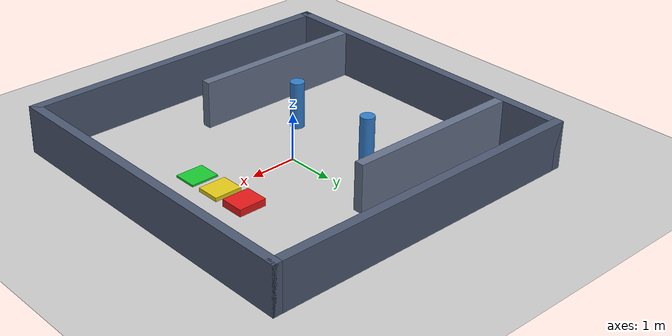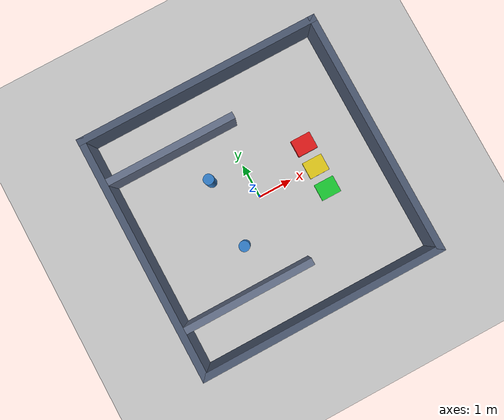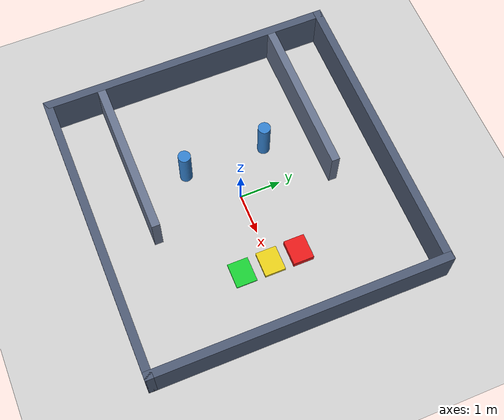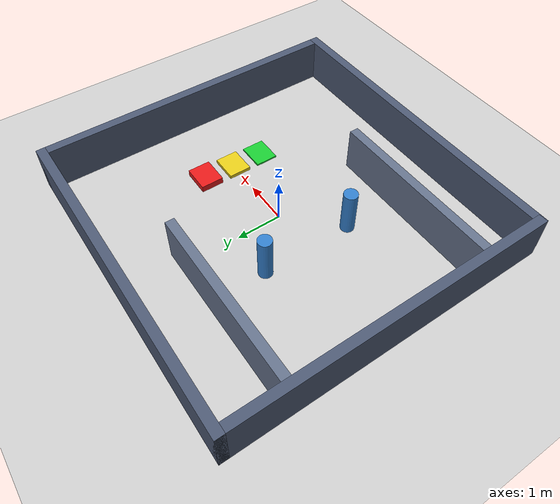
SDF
<?xml version="1.0"?>
<sdf version="1.6">
  <world name="default">
    <physics type="ode">
      <real_time_update_rate>1000.0</real_time_update_rate>
      <max_step_size>0.001</max_step_size>
      <real_time_factor>1.0</real_time_factor>
      <ode>
        <solver>
          <type>quick</type>
          <iters>150</iters>
          <sor>1.4</sor>
        </solver>
        <constraints>
          <cfm>0.00001</cfm>
          <erp>0.2</erp>
        </constraints>
      </ode>
    </physics>

    <!-- Essential Gazebo Harmonic System Plugins -->
    <plugin filename="gz-sim-physics-system" name="gz::sim::systems::Physics"/>
    <plugin filename="gz-sim-user-commands-system" name="gz::sim::systems::UserCommands"/>
    <plugin filename="gz-sim-scene-broadcaster-system" name="gz::sim::systems::SceneBroadcaster"/>
    <plugin filename="gz-sim-sensors-system" name="gz::sim::systems::Sensors">
      <render_engine>ogre2</render_engine>
    </plugin>
    <plugin filename="gz-sim-imu-system" name="gz::sim::systems::Imu"/>

    <!-- High-Ambient Lighting -->
    <scene>
      <ambient>0.85 0.85 0.85 1.0</ambient>
      <background>0.75 0.75 0.85 1.0</background>
      <shadows>false</shadows>
    </scene>

    <!-- GUI Camera pointing directly at center (0, 0) where robot spawns -->
    <gui fullscreen='0'>
      <camera name='user_camera'>
        <pose frame=''>-3.0 -2.5 3.5 0 0.7 0.7</pose>
        <view_controller>orbit</view_controller>
        <projection_type>perspective</projection_type>
      </camera>
    </gui>

    <!-- Flat Ground Floor -->
    <model name="ground_floor">
      <static>true</static>
      <link name="link">
        <collision name="collision">
          <geometry>
            <plane>
              <normal>0 0 1</normal>
              <size>20 20</size>
            </plane>
          </geometry>
        </collision>
        <visual name="visual">
          <geometry>
            <plane>
              <normal>0 0 1</normal>
              <size>20 20</size>
            </plane>
          </geometry>
          <material>
            <ambient>0.8 0.8 0.8 1</ambient>
            <diffuse>0.8 0.8 0.8 1</diffuse>
          </material>
        </visual>
      </link>
    </model>

    <!-- ==================== Enclosed House Structure (No Roof) ==================== -->
    <model name="house_walls">
      <static>true</static>
      <!-- Perimeter Outer Walls (7m x 7m x 1m height) -->
      <link name="outer_wall_n">
        <pose>0 3.5 0.5 0 0 0</pose>
        <collision name="c"><geometry><box><size>7.2 0.2 1.0</size></box></geometry></collision>
        <visual name="v"><geometry><box><size>7.2 0.2 1.0</size></box></geometry><material><ambient>0.3 0.35 0.45 1</ambient><diffuse>0.3 0.35 0.45 1</diffuse></material></visual>
      </link>
      <link name="outer_wall_s">
        <pose>0 -3.5 0.5 0 0 0</pose>
        <collision name="c"><geometry><box><size>7.2 0.2 1.0</size></box></geometry></collision>
        <visual name="v"><geometry><box><size>7.2 0.2 1.0</size></box></geometry><material><ambient>0.3 0.35 0.45 1</ambient><diffuse>0.3 0.35 0.45 1</diffuse></material></visual>
      </link>
      <link name="outer_wall_e">
        <pose>3.5 0 0.5 0 0 0</pose>
        <collision name="c"><geometry><box><size>0.2 7.2 1.0</size></box></geometry></collision>
        <visual name="v"><geometry><box><size>0.2 7.2 1.0</size></box></geometry><material><ambient>0.3 0.35 0.45 1</ambient><diffuse>0.3 0.35 0.45 1</diffuse></material></visual>
      </link>
      <link name="outer_wall_w">
        <pose>-3.5 0 0.5 0 0 0</pose>
        <collision name="c"><geometry><box><size>0.2 7.2 1.0</size></box></geometry></collision>
        <visual name="v"><geometry><box><size>0.2 7.2 1.0</size></box></geometry><material><ambient>0.3 0.35 0.45 1</ambient><diffuse>0.3 0.35 0.45 1</diffuse></material></visual>
      </link>

      <!-- Room Partition Walls -->
      <link name="room_wall_1">
        <pose>-1.5 2.2 0.5 0 0 0</pose>
        <collision name="c"><geometry><box><size>3.8 0.2 1.0</size></box></geometry></collision>
        <visual name="v"><geometry><box><size>3.8 0.2 1.0</size></box></geometry><material><ambient>0.4 0.45 0.55 1</ambient><diffuse>0.4 0.45 0.55 1</diffuse></material></visual>
      </link>
      <link name="room_wall_2">
        <pose>-1.5 -2.2 0.5 0 0 0</pose>
        <collision name="c"><geometry><box><size>3.8 0.2 1.0</size></box></geometry></collision>
        <visual name="v"><geometry><box><size>3.8 0.2 1.0</size></box></geometry><material><ambient>0.4 0.45 0.55 1</ambient><diffuse>0.4 0.45 0.55 1</diffuse></material></visual>
      </link>
    </model>

    <!-- ==================== Interior Obstacle Poles / Pillars ==================== -->
    <model name="interior_pillars">
      <static>true</static>
      <link name="pillar_left">
        <pose>-1.0 1.0 0.5 0 0 0</pose>
        <collision name="c"><geometry><cylinder><radius>0.15</radius><length>1.0</length></cylinder></geometry></collision>
        <visual name="v"><geometry><cylinder><radius>0.15</radius><length>1.0</length></cylinder></geometry><material><ambient>0.2 0.5 0.8 1</ambient><diffuse>0.2 0.5 0.8 1</diffuse></material></visual>
      </link>
      <link name="pillar_right">
        <pose>-1.0 -1.0 0.5 0 0 0</pose>
        <collision name="c"><geometry><cylinder><radius>0.15</radius><length>1.0</length></cylinder></geometry></collision>
        <visual name="v"><geometry><cylinder><radius>0.15</radius><length>1.0</length></cylinder></geometry><material><ambient>0.2 0.5 0.8 1</ambient><diffuse>0.2 0.5 0.8 1</diffuse></material></visual>
      </link>
    </model>

    <!-- ==================== Perception Test Obstacles (Dead Center in Front of Robot) ==================== -->
    <!-- Robot spawns at (0.0, 0.0) facing +X. Obstacles are placed 1.8m ahead at X = 1.8 -->

    <!-- Obstacle 1: 4 cm Step (Safe floor step <= 0.06m -> Classifies as Cost 0 Safe) -->
    <model name="safe_step_4cm">
      <static>true</static>
      <pose>1.8 -0.7 0.02 0 0 0</pose>
      <link name="link">
        <collision name="c"><geometry><box><size>0.6 0.5 0.04</size></box></geometry></collision>
        <visual name="v">
          <geometry><box><size>0.6 0.5 0.04</size></box></geometry>
          <material><ambient>0.1 0.8 0.2 1</ambient><diffuse>0.1 0.8 0.2 1</diffuse></material>
        </visual>
      </link>
    </model>

    <!-- Obstacle 2: 8 cm Slope / Ramp (Risky step between 0.06m and 0.12m -> Classifies as Cost 1-99) -->
    <model name="risky_slope_8cm">
      <static>true</static>
      <pose>1.8 0.0 0.04 0 0 0</pose>
      <link name="link">
        <collision name="c"><geometry><box><size>0.6 0.5 0.08</size></box></geometry></collision>
        <visual name="v">
          <geometry><box><size>0.6 0.5 0.08</size></box></geometry>
          <material><ambient>0.9 0.8 0.1 1</ambient><diffuse>0.9 0.8 0.1 1</diffuse></material>
        </visual>
      </link>
    </model>

    <!-- Obstacle 3: 15 cm Box (Lethal obstacle >= 0.12m -> Classifies as Cost 100 Blocked) -->
    <model name="blocked_box_15cm">
      <static>true</static>
      <pose>1.8 0.7 0.075 0 0 0</pose>
      <link name="link">
        <collision name="c"><geometry><box><size>0.6 0.5 0.15</size></box></geometry></collision>
        <visual name="v">
          <geometry><box><size>0.6 0.5 0.15</size></box></geometry>
          <material><ambient>0.9 0.1 0.1 1</ambient><diffuse>0.9 0.1 0.1 1</diffuse></material>
        </visual>
      </link>
    </model>

  </world>
</sdf>
